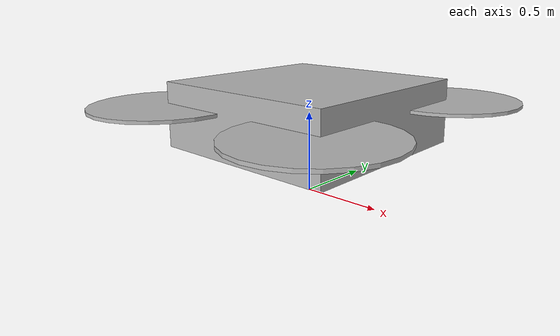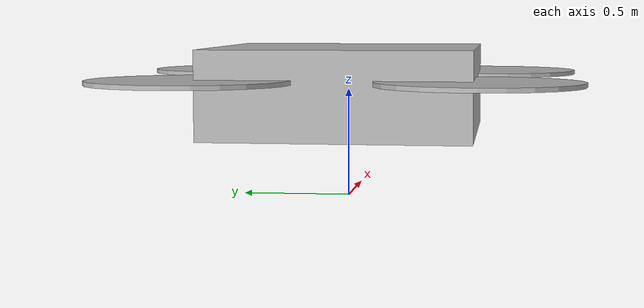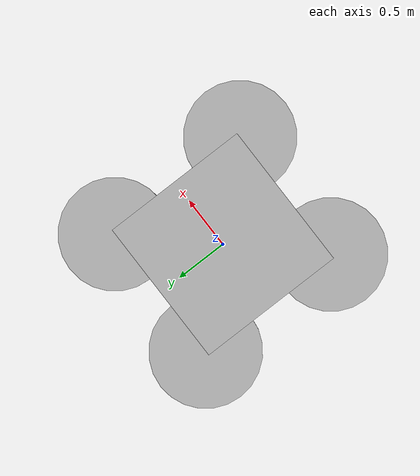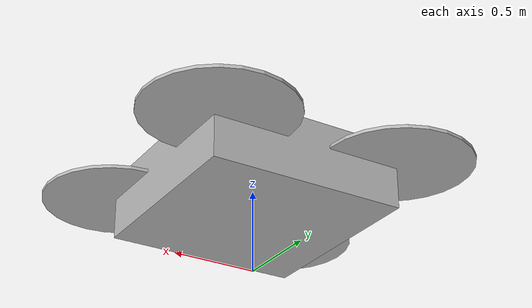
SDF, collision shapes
<?xml version="1.0" encoding="UTF-8"?>
<sdf version='1.9'>
  <model name='sr20'>

    <include merge='true'>
      <uri>model://sr20_base</uri>
    </include>

    <!-- MOTOR 0 -->
    <plugin filename="gz-sim-multicopter-motor-model-system"
            name="gz::sim::systems::MulticopterMotorModel">
      <jointName>rotor_0_joint</jointName>
      <linkName>rotor_0</linkName>
      <turningDirection>ccw</turningDirection>

      <!-- FAST response (large prop but responsive ESC) -->
      <timeConstantUp>0.05</timeConstantUp>
      <timeConstantDown>0.08</timeConstantDown>

      <!-- Realistic RPM (~2800 rpm ≈ 293 rad/s) -->
      <maxRotVelocity>320</maxRotVelocity>

      <!-- CRITICAL: thrust generation -->
      <motorConstant>7.5e-4</motorConstant>

      <!-- yaw torque -->
      <momentConstant>0.10</momentConstant>

      <commandSubTopic>command/motor_speed</commandSubTopic>
      <motorNumber>0</motorNumber>

      <rotorDragCoefficient>8e-5</rotorDragCoefficient>
      <rollingMomentCoefficient>1e-5</rollingMomentCoefficient>

      <rotorVelocitySlowdownSim>5</rotorVelocitySlowdownSim>
      <motorType>velocity</motorType>
    </plugin>
    <!-- MOTOR 1 -->
    <plugin filename="gz-sim-multicopter-motor-model-system"
            name="gz::sim::systems::MulticopterMotorModel">
      <jointName>rotor_1_joint</jointName>
      <linkName>rotor_1</linkName>

      <!-- FIXED: correct direction -->
      <turningDirection>ccw</turningDirection>

      <!-- Faster, realistic response -->
      <timeConstantUp>0.05</timeConstantUp>
      <timeConstantDown>0.08</timeConstantDown>

      <!-- ~2800 RPM -->
      <maxRotVelocity>320</maxRotVelocity>

      <!-- Increased thrust capability -->
      <motorConstant>7.5e-4</motorConstant>

      <!-- Better yaw control -->
      <momentConstant>0.10</momentConstant>

      <commandSubTopic>command/motor_speed</commandSubTopic>
      <motorNumber>1</motorNumber>

      <!-- Increased aerodynamic effects -->
      <rotorDragCoefficient>8e-5</rotorDragCoefficient>
      <rollingMomentCoefficient>1e-5</rollingMomentCoefficient>

      <rotorVelocitySlowdownSim>5</rotorVelocitySlowdownSim>
      <motorType>velocity</motorType>
    </plugin>
    <!-- MOTOR 2 -->
    <plugin filename="gz-sim-multicopter-motor-model-system"
            name="gz::sim::systems::MulticopterMotorModel">
      <jointName>rotor_2_joint</jointName>
      <linkName>rotor_2</linkName>

      <!-- FIXED: correct direction -->
      <turningDirection>cw</turningDirection>

      <!-- Faster motor response -->
      <timeConstantUp>0.05</timeConstantUp>
      <timeConstantDown>0.08</timeConstantDown>

      <!-- ~2800 RPM -->
      <maxRotVelocity>320</maxRotVelocity>

      <!-- Increased thrust capability -->
      <motorConstant>7.5e-4</motorConstant>

      <!-- Better yaw authority -->
      <momentConstant>0.10</momentConstant>

      <commandSubTopic>command/motor_speed</commandSubTopic>
      <motorNumber>2</motorNumber>

      <!-- Aerodynamic effects -->
      <rotorDragCoefficient>8e-5</rotorDragCoefficient>
      <rollingMomentCoefficient>1e-5</rollingMomentCoefficient>

      <rotorVelocitySlowdownSim>5</rotorVelocitySlowdownSim>
      <motorType>velocity</motorType>
    </plugin>
    <!-- MOTOR 3 -->
    <plugin filename="gz-sim-multicopter-motor-model-system"
        name="gz::sim::systems::MulticopterMotorModel">
      <jointName>rotor_3_joint</jointName>
      <linkName>rotor_3</linkName>

      <!-- Direction is correct -->
      <turningDirection>cw</turningDirection>

      <!-- Faster response -->
      <timeConstantUp>0.05</timeConstantUp>
      <timeConstantDown>0.08</timeConstantDown>

      <!-- ~2800 RPM -->
      <maxRotVelocity>320</maxRotVelocity>

      <!-- Stronger thrust -->
      <motorConstant>7.5e-4</motorConstant>

      <!-- Better yaw torque -->
      <momentConstant>0.10</momentConstant>

      <commandSubTopic>command/motor_speed</commandSubTopic>
      <motorNumber>3</motorNumber>

      <!-- Aerodynamics -->
      <rotorDragCoefficient>8e-5</rotorDragCoefficient>
      <rollingMomentCoefficient>1e-5</rollingMomentCoefficient>

      <rotorVelocitySlowdownSim>5</rotorVelocitySlowdownSim>
      <motorType>velocity</motorType>
    </plugin>
  </model>
</sdf>

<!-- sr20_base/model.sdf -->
<sdf version='1.9'>
  <model name='sr20_base'>
    <pose>0 0 0.5 0 0 0</pose>
    <self_collide>false</self_collide>
    <static>false</static>
    <link name="base_link">
      <inertial>
        <pose>-0.04317 0 -0.15251 0 0 0</pose>
        <mass>22.0</mass>
        <inertia>
          <ixx>3.38</ixx>
          <ixy>0</ixy>
          <ixz>0</ixz>
          <iyy>3.22</iyy>
          <iyz>0</iyz>
          <izz>6.05</izz>
        </inertia>
      </inertial>
      <gravity>true</gravity>
      <velocity_decay />
      <visual name="drone_visual">
        <pose>0.04317 0 0.15251 0 0 0</pose>
        <geometry>
          <mesh>
            <uri>model://sr20_base/meshes/SR20_agri_drone01.STL</uri>
            <scale>1 1 1</scale>
          </mesh>
        </geometry>
      </visual>
      <collision name="body_collision">
        <geometry>
          <box>
            <size>1.2 1.2 0.4</size>
          </box>
        </geometry>
      </collision>
      <sensor name="air_pressure_sensor" type="air_pressure">
        <always_on>1</always_on>
        <update_rate>50</update_rate>
        <air_pressure>
          <!-- Noise modeled after BMP390 -->
          <pressure>
            <noise type="gaussian">
              <mean>0</mean>
              <stddev>3</stddev>
            </noise>
          </pressure>
        </air_pressure>
      </sensor>
      <sensor name="magnetometer_sensor" type="magnetometer">
        <always_on>1</always_on>
        <update_rate>100</update_rate>
        <magnetometer>
          <x>
            <noise type="gaussian">
              <stddev>0.0001</stddev>
            </noise>
          </x>
          <y>
            <noise type="gaussian">
              <stddev>0.0001</stddev>
            </noise>
          </y>
          <z>
            <noise type="gaussian">
              <stddev>0.0001</stddev>
            </noise>
          </z>
        </magnetometer>
      </sensor>
      <sensor name="imu_sensor" type="imu">
        <always_on>1</always_on>
        <update_rate>250</update_rate>
        <imu>
          <angular_velocity>
            <!-- Noise modeled after IIM42653 -->
            <!-- 0.05 deg/s converted to rad/s -->
            <x>
              <noise type="gaussian">
                <mean>0.0</mean>
                <stddev>0.0008726646</stddev>
              </noise>
            </x>
            <y>
              <noise type="gaussian">
                <mean>0.0</mean>
                <stddev>0.0008726646</stddev>
              </noise>
            </y>
            <z>
              <noise type="gaussian">
                <mean>0.0</mean>
                <stddev>0.0008726646</stddev>
              </noise>
            </z>
          </angular_velocity>
          <linear_acceleration>
            <!-- Noise modeled after IIM42653 -->
            <!-- X & Y axis: 0.65 mg-rms converted to m/ss -->
            <x>
              <noise type="gaussian">
                <mean>0.0</mean>
                <stddev>0.00637</stddev>
              </noise>
            </x>
            <y>
              <noise type="gaussian">
                <mean>0.0</mean>
                <stddev>0.00637</stddev>
              </noise>
            </y>
            <!-- Z axis: 0.70 mg-rms converted to m/ss-->
            <z>
              <noise type="gaussian">
                <mean>0.0</mean>
                <stddev>0.00686</stddev>
              </noise>
            </z>
          </linear_acceleration>
        </imu>
      </sensor>
      <sensor name="navsat_sensor" type="navsat">
        <always_on>1</always_on>
        <update_rate>30</update_rate>
      </sensor>
    </link>
    <link name="rotor_0">
      <gravity>true</gravity>
      <self_collide>false</self_collide>
      <velocity_decay />
      <!-- Correct position -->
      <pose>0.584 -0.6235 0.06 0 0 0</pose>
      <inertial>
        <mass>1.7</mass>
        <inertia>
          <!-- Realistic inertia for 36" prop -->
          <ixx>0.12</ixx>
          <iyy>0.12</iyy>
          <izz>0.17</izz>
          <ixy>0</ixy>
          <ixz>0</ixz>
          <iyz>0</iyz>
        </inertia>
      </inertial>
      <!-- Keep collision simple -->
      <collision name="rotor_0_collision">
        <pose>0 0 0 0 0 0</pose>
        <geometry>
          <cylinder>
            <radius>0.45</radius>
            <length>0.02</length>
          </cylinder>
        </geometry>
      </collision>
    </link>
    <joint name="rotor_0_joint" type="revolute">
      <parent>base_link</parent>
      <child>rotor_0</child>
      <axis>
        <xyz>0 0 1</xyz>
        <limit>
          <lower>-1e+16</lower>
          <upper>1e+16</upper>
        </limit>
        <dynamics>
          <spring_reference>0</spring_reference>
          <spring_stiffness>0</spring_stiffness>
        </dynamics>
      </axis>
    </joint>
    <link name="rotor_1">
      <gravity>true</gravity>
      <self_collide>false</self_collide>
      <velocity_decay />

      <!-- Correct position -->
      <pose>-0.584 0.6235 0.06 0 0 0</pose>

      <inertial>
        <mass>1.7</mass>
        <inertia>
          <!-- Realistic inertia for 36" prop -->
          <ixx>0.12</ixx>
          <iyy>0.12</iyy>
          <izz>0.17</izz>
          <ixy>0</ixy>
          <ixz>0</ixz>
          <iyz>0</iyz>
        </inertia>
      </inertial>

      <!-- Better collision shape -->
      <collision name="rotor_1_collision">
        <pose>0 0 0 0 0 0</pose>
        <geometry>
          <cylinder>
            <radius>0.45</radius>
            <length>0.02</length>
          </cylinder>
        </geometry>
      </collision>
    </link>

    <joint name="rotor_1_joint" type="revolute">
      <parent>base_link</parent>
      <child>rotor_1</child>
      <axis>
        <xyz>0 0 1</xyz>
        <limit>
          <lower>-1e+16</lower>
          <upper>1e+16</upper>
        </limit>
        <dynamics>
          <spring_reference>0</spring_reference>
          <spring_stiffness>0</spring_stiffness>
        </dynamics>
      </axis>
    </joint>
    <link name="rotor_2">
      <gravity>true</gravity>
      <self_collide>false</self_collide>
      <velocity_decay />

      <!-- Correct position -->
      <pose>0.584 0.6235 0.06 0 0 0</pose>

      <inertial>
        <mass>1.7</mass>
        <inertia>
          <!-- Realistic inertia for 36" prop -->
          <ixx>0.12</ixx>
          <iyy>0.12</iyy>
          <izz>0.17</izz>
          <ixy>0</ixy>
          <ixz>0</ixz>
          <iyz>0</iyz>
        </inertia>
      </inertial>

      <!-- Better collision model -->
      <collision name="rotor_2_collision">
        <pose>0 0 0 0 0 0</pose>
        <geometry>
          <cylinder>
            <radius>0.45</radius>
            <length>0.02</length>
          </cylinder>
        </geometry>
      </collision>
    </link>

    <joint name="rotor_2_joint" type="revolute">
      <parent>base_link</parent>
      <child>rotor_2</child>
      <axis>
        <xyz>0 0 1</xyz>
        <limit>
          <lower>-1e+16</lower>
          <upper>1e+16</upper>
        </limit>
        <dynamics>
          <spring_reference>0</spring_reference>
          <spring_stiffness>0</spring_stiffness>
        </dynamics>
      </axis>
    </joint>
    <link name="rotor_3">
      <gravity>true</gravity>
      <self_collide>false</self_collide>
      <velocity_decay />

      <!-- Correct position -->
      <pose>-0.584 -0.6235 0.06 0 0 0</pose>

      <inertial>
        <mass>1.7</mass>
        <inertia>
          <!-- Realistic inertia for 36" prop -->
          <ixx>0.12</ixx>
          <iyy>0.12</iyy>
          <izz>0.17</izz>
          <ixy>0</ixy>
          <ixz>0</ixz>
          <iyz>0</iyz>
        </inertia>
      </inertial>

      <!-- Proper prop disc collision -->
      <collision name="rotor_3_collision">
        <pose>0 0 0 0 0 0</pose>
        <geometry>
          <cylinder>
            <radius>0.45</radius>
            <length>0.02</length>
          </cylinder>
        </geometry>
      </collision>
    </link>

    <joint name="rotor_3_joint" type="revolute">
      <parent>base_link</parent>
      <child>rotor_3</child>
      <axis>
        <xyz>0 0 1</xyz>
        <limit>
          <lower>-1e+16</lower>
          <upper>1e+16</upper>
        </limit>
        <dynamics>
          <spring_reference>0</spring_reference>
          <spring_stiffness>0</spring_stiffness>
        </dynamics>
      </axis>
    </joint>
  </model>
</sdf>
